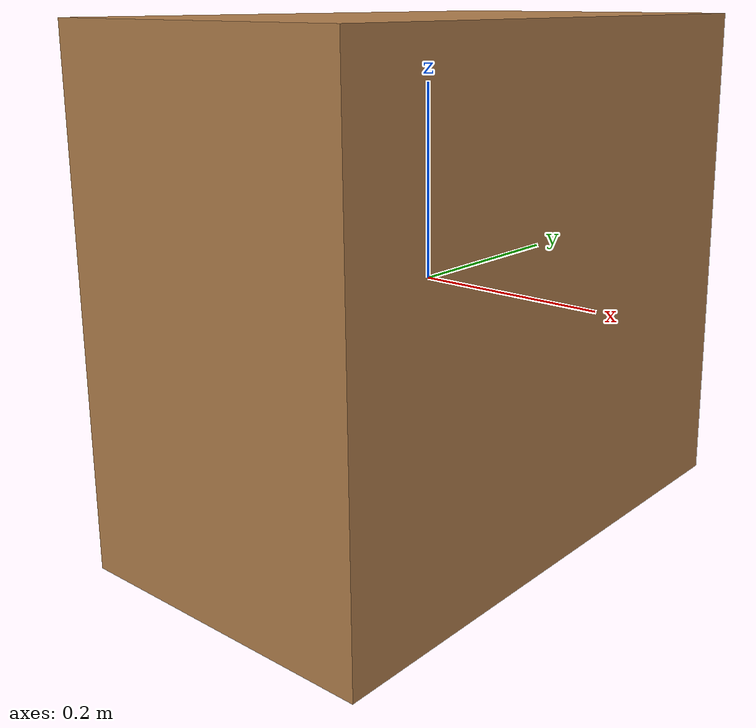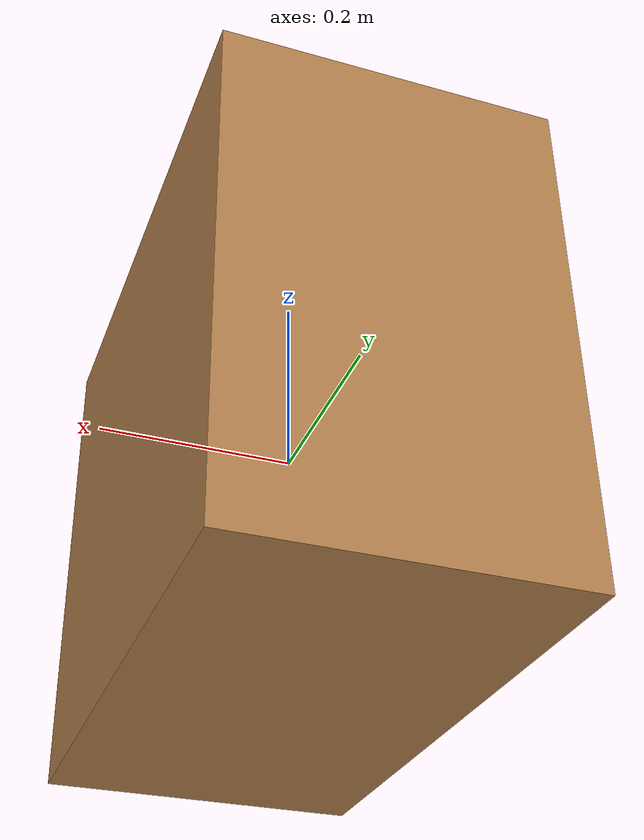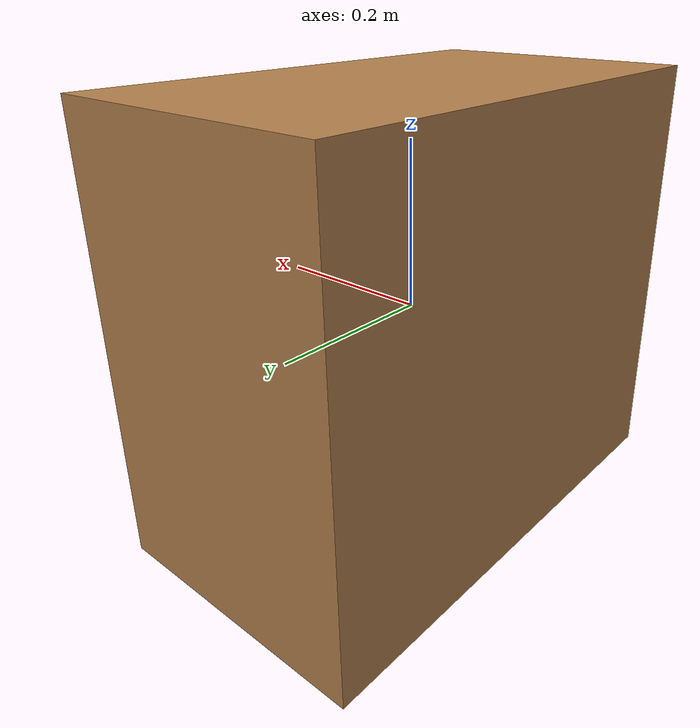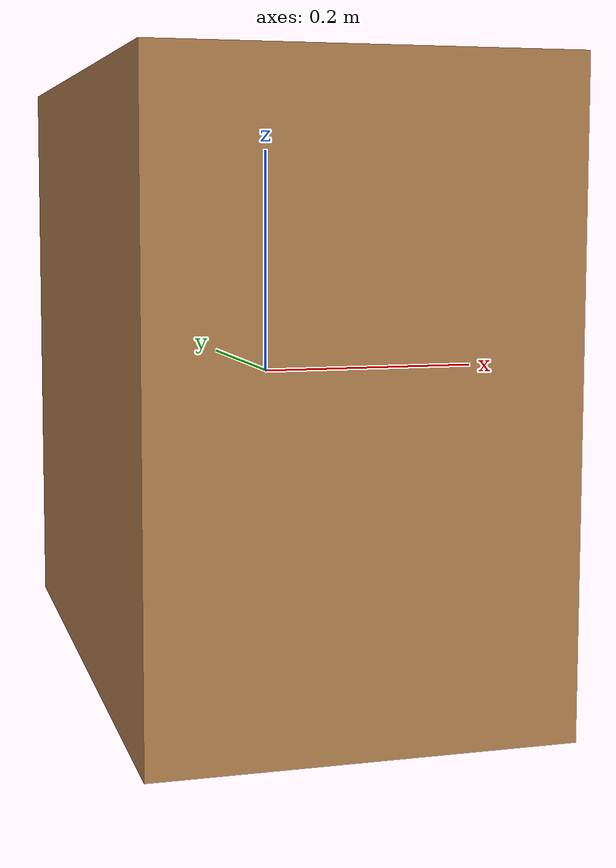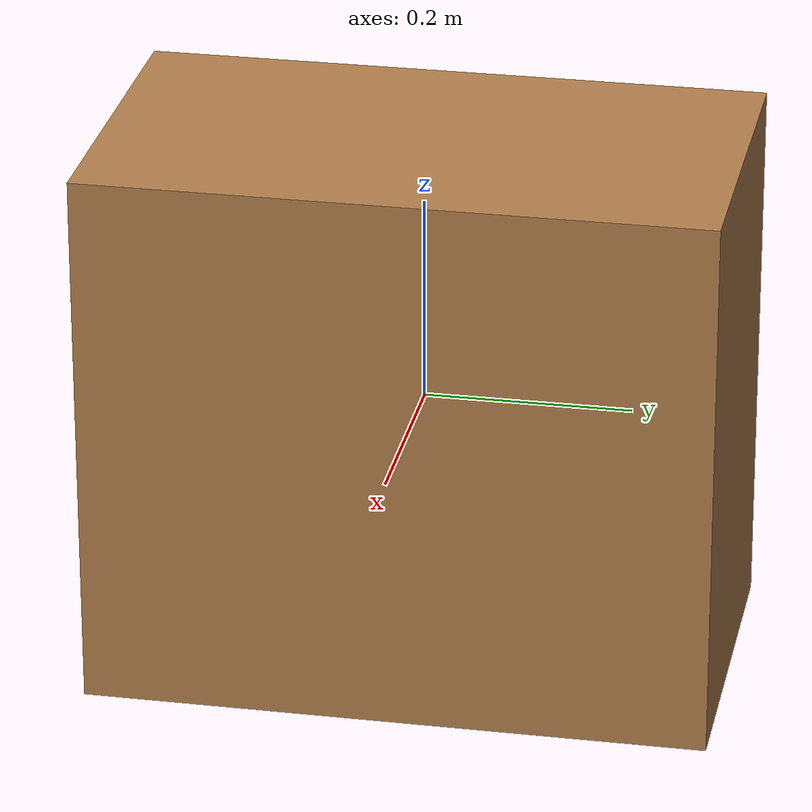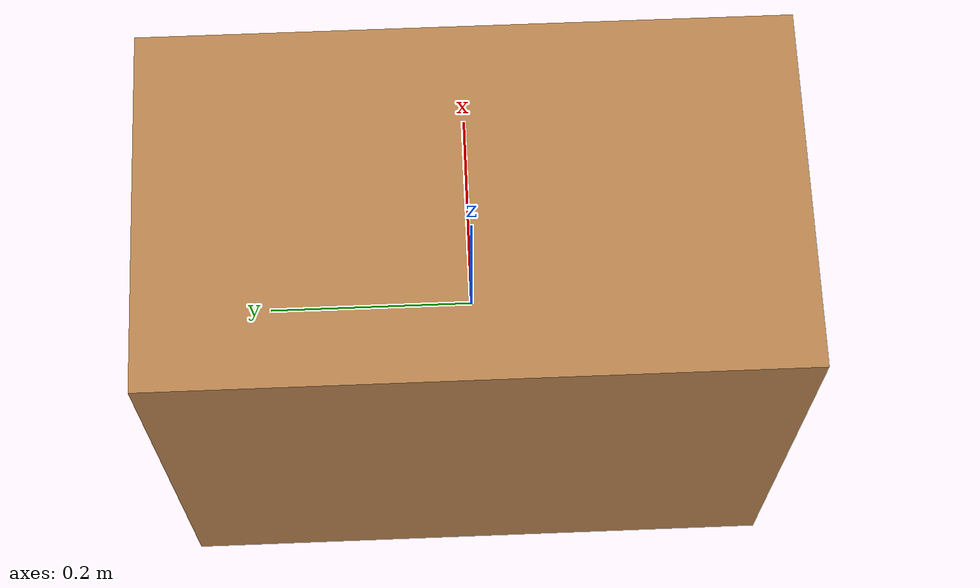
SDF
<?xml version="1.0"?>
<sdf version="1.6">
  <model name="library_table">
    <static>true</static>
    <link name="link">
      <collision name="collision">
        <geometry><box><size>0.34 0.6 0.53</size></box></geometry>
        <surface><friction><ode><mu>1.0</mu><mu2>1.0</mu2></ode></friction></surface>
      </collision>
      <visual name="visual">
        <geometry><box><size>0.34 0.6 0.53</size></box></geometry>
        <material><script>
          <uri>file://media/materials/scripts/gazebo.material</uri>
          <name>Gazebo/Wood</name>
        </script></material>
      </visual>
    </link>
  </model>
</sdf>
